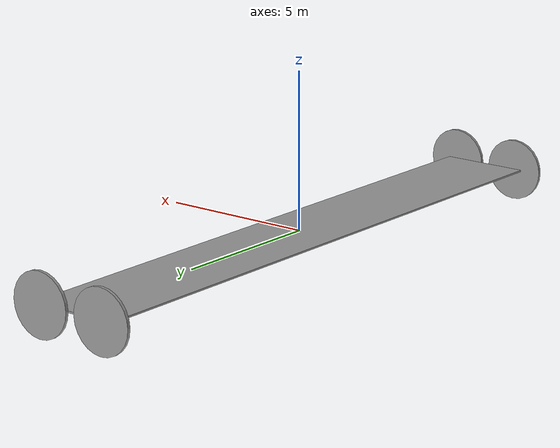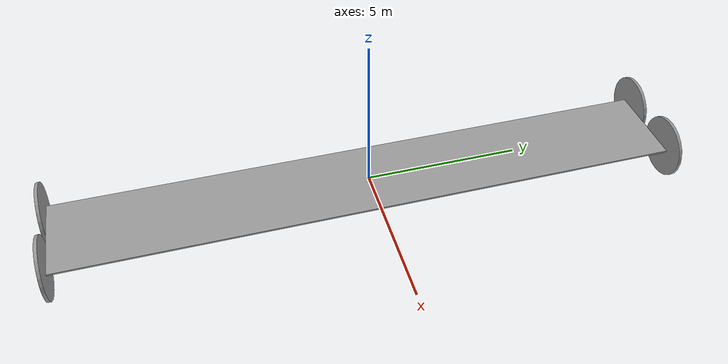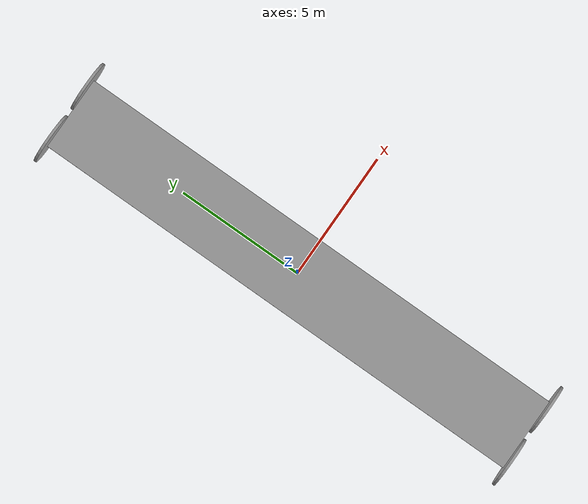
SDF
<?xml version='1.0'?>
<sdf version='1.7'>
  <model name='crane2'>
    <link name='Bridge'>
      <inertial>
        <mass>0.746587</mass>
        <inertia>
          <ixx>1.27709</ixx>
          <ixy>0</ixy>
          <ixz>0</ixz>
          <iyy>0.520424</iyy>
          <iyz>0</iyz>
          <izz>1.79711</izz>
        </inertia>
        <pose>0 0 0 0 -0 0</pose>
      </inertial>
      <pose>-1e-06 -0.039746 0 0 -0 0</pose>
      <gravity>1</gravity>
      <self_collide>0</self_collide>
      <kinematic>0</kinematic>
      <enable_wind>0</enable_wind>
      <visual name='visual'>
        <pose>0 0 0 0 -0 0</pose>
        <geometry>
          <box>
            <size>2.89164 20 0.056992</size>
          </box>
        </geometry>
        <material>
          <lighting>1</lighting>
          <script>
            <uri>file://media/materials/scripts/gazebo.material</uri>
            <name>Gazebo/Grey</name>
          </script>
          <shader type='pixel'>
            <normal_map>__default__</normal_map>
          </shader>
          <emissive>0 0 0 1</emissive>
          <ambient>0.3 0.3 0.3 1</ambient>
          <diffuse>0.7 0.7 0.7 1</diffuse>
          <specular>0.01 0.01 0.01 1</specular>
        </material>
        <transparency>0</transparency>
        <cast_shadows>1</cast_shadows>
      </visual>
      <collision name='collision'>
        <laser_retro>0</laser_retro>
        <max_contacts>10</max_contacts>
        <pose>0 0 0 0 -0 0</pose>
        <geometry>
          <box>
            <size>2.89164 20 0.056992</size>
          </box>
        </geometry>
        <surface>
          <friction>
            <ode>
              <mu>1</mu>
              <mu2>1</mu2>
              <fdir1>0 0 0</fdir1>
              <slip1>0</slip1>
              <slip2>0</slip2>
            </ode>
            <torsional>
              <coefficient>1</coefficient>
              <patch_radius>0</patch_radius>
              <surface_radius>0</surface_radius>
              <use_patch_radius>1</use_patch_radius>
              <ode>
                <slip>0</slip>
              </ode>
            </torsional>
          </friction>
          <bounce>
            <restitution_coefficient>0</restitution_coefficient>
            <threshold>1e+06</threshold>
          </bounce>
          <contact>
            <collide_without_contact>0</collide_without_contact>
            <collide_without_contact_bitmask>1</collide_without_contact_bitmask>
            <collide_bitmask>1</collide_bitmask>
            <ode>
              <soft_cfm>0</soft_cfm>
              <soft_erp>0.2</soft_erp>
              <kp>1e+13</kp>
              <kd>1</kd>
              <max_vel>0.01</max_vel>
              <min_depth>0</min_depth>
            </ode>
            <bullet>
              <split_impulse>1</split_impulse>
              <split_impulse_penetration_threshold>-0.01</split_impulse_penetration_threshold>
              <soft_cfm>0</soft_cfm>
              <soft_erp>0.2</soft_erp>
              <kp>1e+13</kp>
              <kd>1</kd>
            </bullet>
          </contact>
        </surface>
      </collision>
    </link>
    <link name='LeftWheelFree'>
      <inertial>
        <mass>0.0041796</mass>
        <inertia>
          <ixx>1.439e-05</ixx>
          <ixy>0</ixy>
          <ixz>0</ixz>
          <iyy>1.439e-05</iyy>
          <iyz>0</iyz>
          <izz>2.177e-05</izz>
        </inertia>
        <pose>0 0 0 0 -0 0</pose>
      </inertial>
      <pose>-1.14582 10 0 1.5707 -0 0</pose>
      <gravity>1</gravity>
      <self_collide>0</self_collide>
      <kinematic>0</kinematic>
      <enable_wind>0</enable_wind>
      <visual name='visual'>
        <pose>0 0 0 0 -0 0</pose>
        <geometry>
          <cylinder>
            <radius>1</radius>
            <length>0.10028</length>
          </cylinder>
        </geometry>
        <material>
          <lighting>1</lighting>
          <script>
            <uri>file://media/materials/scripts/gazebo.material</uri>
            <name>Gazebo/Grey</name>
          </script>
          <shader type='pixel'>
            <normal_map>__default__</normal_map>
          </shader>
          <ambient>0.3 0.3 0.3 1</ambient>
          <diffuse>0.7 0.7 0.7 1</diffuse>
          <specular>0.01 0.01 0.01 1</specular>
          <emissive>0 0 0 1</emissive>
        </material>
        <transparency>0</transparency>
        <cast_shadows>1</cast_shadows>
      </visual>
      <collision name='collision'>
        <laser_retro>0</laser_retro>
        <max_contacts>10</max_contacts>
        <pose>0 0 0 0 -0 0</pose>
        <geometry>
          <cylinder>
            <radius>1</radius>
            <length>0.10028</length>
          </cylinder>
        </geometry>
        <surface>
          <friction>
            <ode>
              <mu>1</mu>
              <mu2>1</mu2>
              <fdir1>0 0 0</fdir1>
              <slip1>0</slip1>
              <slip2>0</slip2>
            </ode>
            <torsional>
              <coefficient>1</coefficient>
              <patch_radius>0</patch_radius>
              <surface_radius>0</surface_radius>
              <use_patch_radius>1</use_patch_radius>
              <ode>
                <slip>0</slip>
              </ode>
            </torsional>
          </friction>
          <bounce>
            <restitution_coefficient>0</restitution_coefficient>
            <threshold>1e+06</threshold>
          </bounce>
          <contact>
            <collide_without_contact>0</collide_without_contact>
            <collide_without_contact_bitmask>1</collide_without_contact_bitmask>
            <collide_bitmask>1</collide_bitmask>
            <ode>
              <soft_cfm>0</soft_cfm>
              <soft_erp>0.2</soft_erp>
              <kp>1e+13</kp>
              <kd>1</kd>
              <max_vel>0.01</max_vel>
              <min_depth>0</min_depth>
            </ode>
            <bullet>
              <split_impulse>1</split_impulse>
              <split_impulse_penetration_threshold>-0.01</split_impulse_penetration_threshold>
              <soft_cfm>0</soft_cfm>
              <soft_erp>0.2</soft_erp>
              <kp>1e+13</kp>
              <kd>1</kd>
            </bullet>
          </contact>
        </surface>
      </collision>
    </link>
    <link name='LeftWheelMotor'>
      <inertial>
        <mass>0.0041796</mass>
        <inertia>
          <ixx>1.439e-05</ixx>
          <ixy>0</ixy>
          <ixz>0</ixz>
          <iyy>1.439e-05</iyy>
          <iyz>0</iyz>
          <izz>2.177e-05</izz>
        </inertia>
        <pose>0 0 0 0 -0 0</pose>
      </inertial>
      <pose>1.14582 10 -0 1.5707 -0 0</pose>
      <gravity>1</gravity>
      <self_collide>0</self_collide>
      <kinematic>0</kinematic>
      <enable_wind>0</enable_wind>
      <visual name='visual'>
        <pose>0 0 0 0 -0 0</pose>
        <geometry>
          <cylinder>
            <radius>1</radius>
            <length>0.10028</length>
          </cylinder>
        </geometry>
        <material>
          <lighting>1</lighting>
          <script>
            <uri>file://media/materials/scripts/gazebo.material</uri>
            <name>Gazebo/Grey</name>
          </script>
          <shader type='pixel'>
            <normal_map>__default__</normal_map>
          </shader>
          <ambient>0.3 0.3 0.3 1</ambient>
          <diffuse>0.7 0.7 0.7 1</diffuse>
          <specular>0.01 0.01 0.01 1</specular>
          <emissive>0 0 0 1</emissive>
        </material>
        <transparency>0</transparency>
        <cast_shadows>1</cast_shadows>
      </visual>
      <collision name='collision'>
        <laser_retro>0</laser_retro>
        <max_contacts>10</max_contacts>
        <pose>0 0 0 0 -0 0</pose>
        <geometry>
          <cylinder>
            <radius>1</radius>
            <length>0.10028</length>
          </cylinder>
        </geometry>
        <surface>
          <friction>
            <ode>
              <mu>1</mu>
              <mu2>1</mu2>
              <fdir1>0 0 0</fdir1>
              <slip1>0</slip1>
              <slip2>0</slip2>
            </ode>
            <torsional>
              <coefficient>1</coefficient>
              <patch_radius>0</patch_radius>
              <surface_radius>0</surface_radius>
              <use_patch_radius>1</use_patch_radius>
              <ode>
                <slip>0</slip>
              </ode>
            </torsional>
          </friction>
          <bounce>
            <restitution_coefficient>0</restitution_coefficient>
            <threshold>1e+06</threshold>
          </bounce>
          <contact>
            <collide_without_contact>0</collide_without_contact>
            <collide_without_contact_bitmask>1</collide_without_contact_bitmask>
            <collide_bitmask>1</collide_bitmask>
            <ode>
              <soft_cfm>0</soft_cfm>
              <soft_erp>0.2</soft_erp>
              <kp>1e+13</kp>
              <kd>1</kd>
              <max_vel>0.01</max_vel>
              <min_depth>0</min_depth>
            </ode>
            <bullet>
              <split_impulse>1</split_impulse>
              <split_impulse_penetration_threshold>-0.01</split_impulse_penetration_threshold>
              <soft_cfm>0</soft_cfm>
              <soft_erp>0.2</soft_erp>
              <kp>1e+13</kp>
              <kd>1</kd>
            </bullet>
          </contact>
        </surface>
      </collision>
    </link>
    <link name='RightWheelFree'>
      <inertial>
        <mass>0.0041796</mass>
        <inertia>
          <ixx>1.439e-05</ixx>
          <ixy>0</ixy>
          <ixz>0</ixz>
          <iyy>1.439e-05</iyy>
          <iyz>0</iyz>
          <izz>2.177e-05</izz>
        </inertia>
        <pose>0 0 0 0 -0 0</pose>
      </inertial>
      <pose>-1.14582 -10.1003 -0 1.5707 -0 0</pose>
      <gravity>1</gravity>
      <self_collide>0</self_collide>
      <kinematic>0</kinematic>
      <enable_wind>0</enable_wind>
      <visual name='visual'>
        <pose>0 0 0 0 -0 0</pose>
        <geometry>
          <cylinder>
            <radius>1</radius>
            <length>0.10028</length>
          </cylinder>
        </geometry>
        <material>
          <lighting>1</lighting>
          <script>
            <uri>file://media/materials/scripts/gazebo.material</uri>
            <name>Gazebo/Grey</name>
          </script>
          <shader type='pixel'>
            <normal_map>__default__</normal_map>
          </shader>
          <ambient>0.3 0.3 0.3 1</ambient>
          <diffuse>0.7 0.7 0.7 1</diffuse>
          <specular>0.01 0.01 0.01 1</specular>
          <emissive>0 0 0 1</emissive>
        </material>
        <transparency>0</transparency>
        <cast_shadows>1</cast_shadows>
      </visual>
      <collision name='collision'>
        <laser_retro>0</laser_retro>
        <max_contacts>10</max_contacts>
        <pose>0 0 0 0 -0 0</pose>
        <geometry>
          <cylinder>
            <radius>1</radius>
            <length>0.10028</length>
          </cylinder>
        </geometry>
        <surface>
          <friction>
            <ode>
              <mu>1</mu>
              <mu2>1</mu2>
              <fdir1>0 0 0</fdir1>
              <slip1>0</slip1>
              <slip2>0</slip2>
            </ode>
            <torsional>
              <coefficient>1</coefficient>
              <patch_radius>0</patch_radius>
              <surface_radius>0</surface_radius>
              <use_patch_radius>1</use_patch_radius>
              <ode>
                <slip>0</slip>
              </ode>
            </torsional>
          </friction>
          <bounce>
            <restitution_coefficient>0</restitution_coefficient>
            <threshold>1e+06</threshold>
          </bounce>
          <contact>
            <collide_without_contact>0</collide_without_contact>
            <collide_without_contact_bitmask>1</collide_without_contact_bitmask>
            <collide_bitmask>1</collide_bitmask>
            <ode>
              <soft_cfm>0</soft_cfm>
              <soft_erp>0.2</soft_erp>
              <kp>1e+13</kp>
              <kd>1</kd>
              <max_vel>0.01</max_vel>
              <min_depth>0</min_depth>
            </ode>
            <bullet>
              <split_impulse>1</split_impulse>
              <split_impulse_penetration_threshold>-0.01</split_impulse_penetration_threshold>
              <soft_cfm>0</soft_cfm>
              <soft_erp>0.2</soft_erp>
              <kp>1e+13</kp>
              <kd>1</kd>
            </bullet>
          </contact>
        </surface>
      </collision>
    </link>
    <link name='RightWheelMotor'>
      <inertial>
        <mass>0.0041796</mass>
        <inertia>
          <ixx>1.439e-05</ixx>
          <ixy>0</ixy>
          <ixz>0</ixz>
          <iyy>1.439e-05</iyy>
          <iyz>0</iyz>
          <izz>2.177e-05</izz>
        </inertia>
        <pose>0 0 0 0 -0 0</pose>
      </inertial>
      <pose>1.14582 -10.1003 0 1.5707 -0 0</pose>
      <gravity>1</gravity>
      <self_collide>0</self_collide>
      <kinematic>0</kinematic>
      <enable_wind>0</enable_wind>
      <visual name='visual'>
        <pose>0 0 0 0 -0 0</pose>
        <geometry>
          <cylinder>
            <radius>1</radius>
            <length>0.10028</length>
          </cylinder>
        </geometry>
        <material>
          <lighting>1</lighting>
          <script>
            <uri>file://media/materials/scripts/gazebo.material</uri>
            <name>Gazebo/Grey</name>
          </script>
          <shader type='pixel'>
            <normal_map>__default__</normal_map>
          </shader>
          <ambient>0.3 0.3 0.3 1</ambient>
          <diffuse>0.7 0.7 0.7 1</diffuse>
          <specular>0.01 0.01 0.01 1</specular>
          <emissive>0 0 0 1</emissive>
        </material>
        <transparency>0</transparency>
        <cast_shadows>1</cast_shadows>
      </visual>
      <collision name='collision'>
        <laser_retro>0</laser_retro>
        <max_contacts>10</max_contacts>
        <pose>0 0 0 0 -0 0</pose>
        <geometry>
          <cylinder>
            <radius>1</radius>
            <length>0.10028</length>
          </cylinder>
        </geometry>
        <surface>
          <friction>
            <ode>
              <mu>1</mu>
              <mu2>1</mu2>
              <fdir1>0 0 0</fdir1>
              <slip1>0</slip1>
              <slip2>0</slip2>
            </ode>
            <torsional>
              <coefficient>1</coefficient>
              <patch_radius>0</patch_radius>
              <surface_radius>0</surface_radius>
              <use_patch_radius>1</use_patch_radius>
              <ode>
                <slip>0</slip>
              </ode>
            </torsional>
          </friction>
          <bounce>
            <restitution_coefficient>0</restitution_coefficient>
            <threshold>1e+06</threshold>
          </bounce>
          <contact>
            <collide_without_contact>0</collide_without_contact>
            <collide_without_contact_bitmask>1</collide_without_contact_bitmask>
            <collide_bitmask>1</collide_bitmask>
            <ode>
              <soft_cfm>0</soft_cfm>
              <soft_erp>0.2</soft_erp>
              <kp>1e+13</kp>
              <kd>1</kd>
              <max_vel>0.01</max_vel>
              <min_depth>0</min_depth>
            </ode>
            <bullet>
              <split_impulse>1</split_impulse>
              <split_impulse_penetration_threshold>-0.01</split_impulse_penetration_threshold>
              <soft_cfm>0</soft_cfm>
              <soft_erp>0.2</soft_erp>
              <kp>1e+13</kp>
              <kd>1</kd>
            </bullet>
          </contact>
        </surface>
      </collision>
    </link>
    <joint name='Bridge_LeftWheelFree' type='revolute'>
      <parent>Bridge</parent>
      <child>LeftWheelFree</child>
      <pose>0 0 0 0 -0 0</pose>
      <axis>
        <xyz>0 0 1</xyz>
        <limit>
          <lower>-1.79769e+308</lower>
          <upper>1.79769e+308</upper>
          <effort>-1</effort>
          <velocity>-1</velocity>
        </limit>
        <dynamics>
          <spring_reference>0</spring_reference>
          <spring_stiffness>0</spring_stiffness>
          <damping>0</damping>
          <friction>0</friction>
        </dynamics>
      </axis>
      <physics>
        <ode>
          <limit>
            <cfm>0</cfm>
            <erp>0.2</erp>
          </limit>
          <suspension>
            <cfm>0</cfm>
            <erp>0.2</erp>
          </suspension>
        </ode>
      </physics>
    </joint>
    <joint name='Bridge_LeftWheelMotor' type='revolute'>
      <parent>Bridge</parent>
      <child>LeftWheelMotor</child>
      <pose>0 0 0 0 -0 0</pose>
      <axis>
        <xyz>0 0 1</xyz>
        <limit>
          <lower>-1.79769e+308</lower>
          <upper>1.79769e+308</upper>
          <effort>-1</effort>
          <velocity>-1</velocity>
        </limit>
        <dynamics>
          <spring_reference>0</spring_reference>
          <spring_stiffness>0</spring_stiffness>
          <damping>0</damping>
          <friction>0</friction>
        </dynamics>
      </axis>
      <physics>
        <ode>
          <limit>
            <cfm>0</cfm>
            <erp>0.2</erp>
          </limit>
          <suspension>
            <cfm>0</cfm>
            <erp>0.2</erp>
          </suspension>
        </ode>
      </physics>
    </joint>
    <joint name='Bridge_RightWheelFree' type='revolute'>
      <parent>Bridge</parent>
      <child>RightWheelFree</child>
      <pose>0 0 0 0 -0 0</pose>
      <axis>
        <xyz>0 0 1</xyz>
        <limit>
          <lower>-1.79769e+308</lower>
          <upper>1.79769e+308</upper>
          <effort>-1</effort>
          <velocity>-1</velocity>
        </limit>
        <dynamics>
          <spring_reference>0</spring_reference>
          <spring_stiffness>0</spring_stiffness>
          <damping>0</damping>
          <friction>0</friction>
        </dynamics>
      </axis>
      <physics>
        <ode>
          <limit>
            <cfm>0</cfm>
            <erp>0.2</erp>
          </limit>
          <suspension>
            <cfm>0</cfm>
            <erp>0.2</erp>
          </suspension>
        </ode>
      </physics>
    </joint>
    <joint name='Bridge_RightWheelMotor' type='revolute'>
      <parent>Bridge</parent>
      <child>RightWheelMotor</child>
      <pose>0 0 0 0 -0 0</pose>
      <axis>
        <xyz>0 0 1</xyz>
        <limit>
          <lower>-1.79769e+308</lower>
          <upper>1.79769e+308</upper>
          <effort>-1</effort>
          <velocity>-1</velocity>
        </limit>
        <dynamics>
          <spring_reference>0</spring_reference>
          <spring_stiffness>0</spring_stiffness>
          <damping>0</damping>
          <friction>0</friction>
        </dynamics>
      </axis>
      <physics>
        <ode>
          <limit>
            <cfm>0</cfm>
            <erp>0.2</erp>
          </limit>
          <suspension>
            <cfm>0</cfm>
            <erp>0.2</erp>
          </suspension>
        </ode>
      </physics>
    </joint>
    <static>0</static>
    <allow_auto_disable>1</allow_auto_disable>
    <plugin name='differential_drive_controller' filename='libgazebo_ros_diff_drive.so'>
      <ros>
        <namespace>/bridge</namespace>
      </ros>
      <left_joint>Bridge_LeftWheelMotor</left_joint>
      <right_joint>Bridge_RightWheelMotor</right_joint>
      <wheel_separation>1</wheel_separation>
      <wheel_diameter>1.3</wheel_diameter>
      <publish_wheel_tf>1</publish_wheel_tf>
      <odometryTopic>odom</odometryTopic>
      <odometryFrame>odom</odometryFrame>
      <robotBaseFrame>base_footprint</robotBaseFrame>
      <publish_odom>1</publish_odom>
      <publish_odom_tf>1</publish_odom_tf>
      <publish_wheel_tf>1</publish_wheel_tf>
    </plugin>
  </model>
</sdf>
